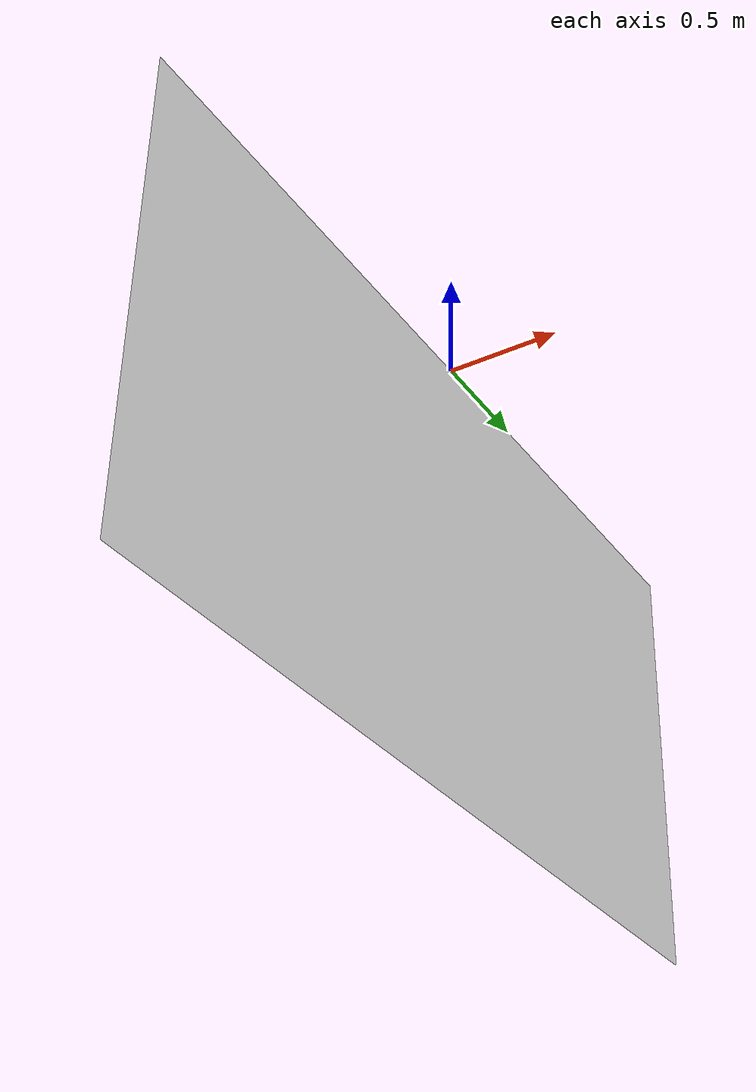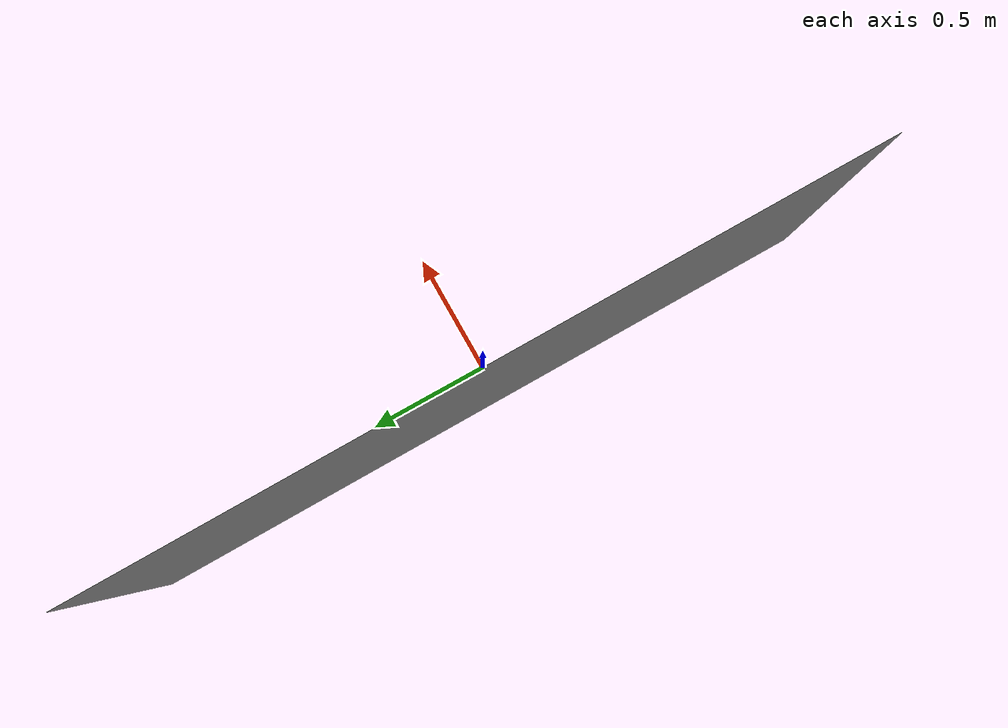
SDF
<?xml version='1.0' encoding='UTF8'?>
<sdf version="1.6">
  <model name="Felix">
    <pose>0 0 0 0 0 0</pose>
    <static>true</static>
    <link name="link">
      <visual name="visual">
        <geometry>
          <mesh>
            <uri>model://rover_sim/models/names/Felix/meshes/mesh.dae</uri>
            <scale>1 1 1</scale>
          </mesh>
        </geometry>
      </visual>
    </link>
  </model>
</sdf>
